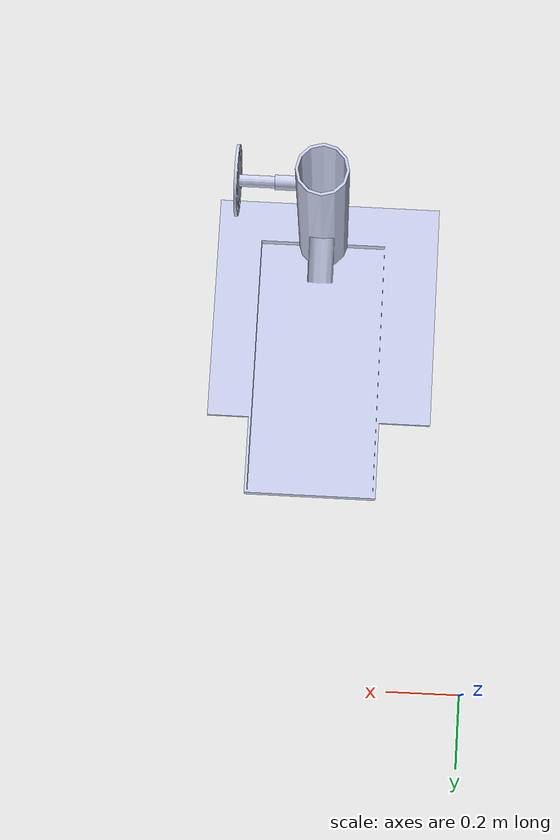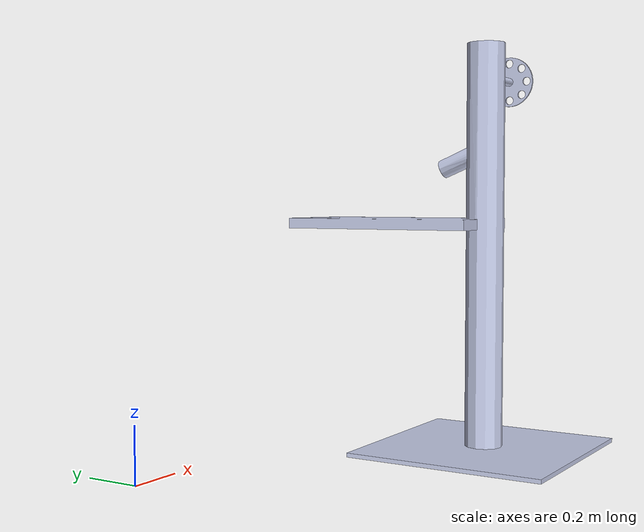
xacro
<robot name="GoldChip_robot">
  <link
    name="goldchip_base_link">
    <inertial>
      <origin
        xyz="0.42417 -1.0 0.2"
        rpy="0 0 0" />
      <mass
        value="8.8008" />
      <inertia
        ixx="0"
        ixy="0"
        ixz="0"
        iyy="0"
        iyz="0"
        izz="0" />
    </inertial>
    <visual>
      <origin
        xyz="0 0 0"
        rpy="0 0 0" />
      <geometry>
        <mesh
          filename="package://robosub_descriptions/models/GoldChip/goldchip_base_link.stl" />
      </geometry>
      <material
        name="">
        <color
          rgba="0.79216 0.81961 0.93333 1" />
      </material>
    </visual>
    <collision>
      <origin
        xyz="0 0 0"
        rpy="0 0 0" />
      <geometry>
        <mesh
          filename="package://robosub_descriptions/models/GoldChip/goldchip_base_link.stl" />
      </geometry>
    </collision>
  </link>
  <link
    name="goldchip_button_holder_link">
    <inertial>
      <origin
        xyz="1.3341E-07 -0.074895 0.024858"
        rpy="0 0 0" />
      <mass
        value="0.01293" />
      <inertia
        ixx="0"
        ixy="0"
        ixz="0"
        iyy="0"
        iyz="0"
        izz="0" />
    </inertial>
    <visual>
      <origin
        xyz="0 0 0"
        rpy="0 0 0" />
      <geometry>
        <mesh
          filename="package://robosub_descriptions/models/GoldChip/goldchip_button_holder_link.stl" />
      </geometry>
      <material
        name="">
        <color
          rgba="0.79216 0.81961 0.93333 1" />
      </material>
    </visual>
  </link>
  <joint
    name="goldchip_button_holder_joint"
    type="prismatic">
    <origin
      xyz="0.42417 -1.0265 1.2902"
      rpy="0.32046 1.3133E-08 1.5708" />
    <parent
      link="goldchip_base_link" />
    <child
      link="goldchip_button_holder_link" />
    <axis
      xyz="0 0 1" />
      <limit
        lower="0"
        upper="0"
        effort="0"
        velocity="0" />
  </joint>
  <link
    name="goldchip_button_link">
    <inertial>
      <origin
        xyz="0 2.2204E-15 0.066992"
        rpy="0 0 0" />
      <mass
        value="0.1287" />
      <inertia
        ixx="0"
        ixy="0"
        ixz="0"
        iyy="0"
        iyz="0"
        izz="0" />
    </inertial>
    <visual>
      <origin
        xyz="0 0 0"
        rpy="0 0 0" />
      <geometry>
        <mesh
          filename="package://robosub_descriptions/models/GoldChip/GoldChipButton.dae" />
      </geometry>
      <material
        name="">
        <color
          rgba="0.79216 0.81961 0.93333 1" />
      </material>
    </visual>
    <collision>
      <origin
        xyz="0 0 0"
        rpy="0 0 0" />
      <geometry>
        <mesh
          filename="package://robosub_descriptions/models/GoldChip/goldchip_button_link.stl" />
      </geometry>
    </collision>
  </link>
  <joint
    name="goldchip_button_joint"
    type="prismatic">
    <origin
      xyz="0 -0.096428 0.032004"
      rpy="1.1376 -0.72203 0.29662" />
    <parent
      link="goldchip_button_holder_link" />
    <child
      link="goldchip_button_link" />
    <axis
      xyz="0 0 1" />
    <limit
      lower="-0.0381"
      upper="0.0"
      effort="10"
      velocity="10" />
  </joint>
  <transmission name="goldchip_button_transmission">
    <type>transmission_interface/SimpleTransmission</type>
      <joint name="goldchip_button_joint">
        <hardwareInterface>hardware_interface/EffortJointInterface</hardwareInterface>
      </joint>
      <actuator name="goldchip_button_servo">
        <hardwareInterface>hardware_interface/EffortJointInterface</hardwareInterface>
        <mechanicalReduction>1</mechanicalReduction>
      </actuator>
  </transmission>
  <gazebo>
    <plugin name="gazebo_ros_control" filename="libgazebo_ros_control.so">
      <robotNamespace>/GoldChip_1</robotNamespace>
    </plugin>
  </gazebo>
</robot>
